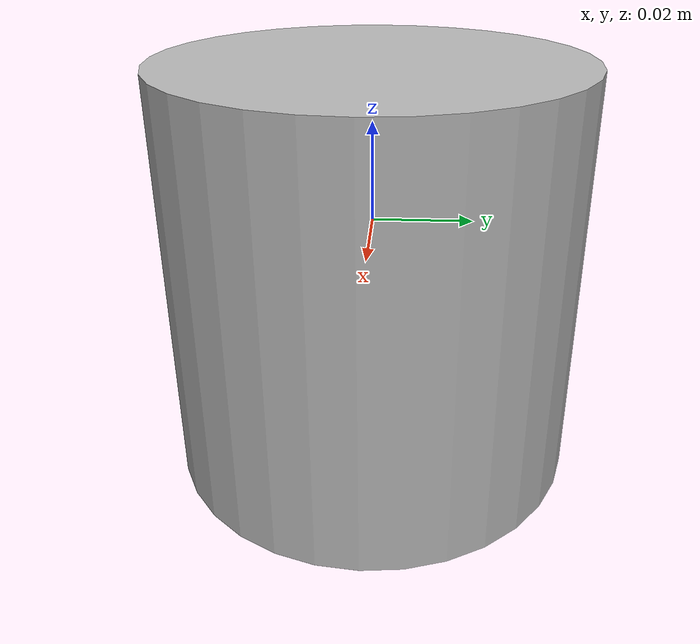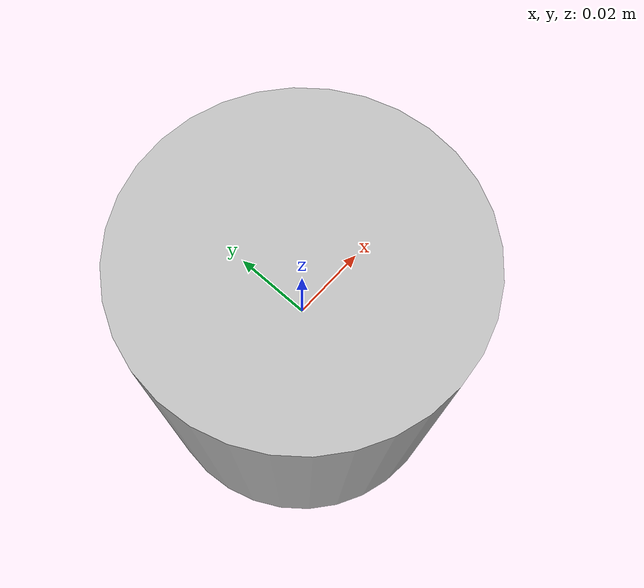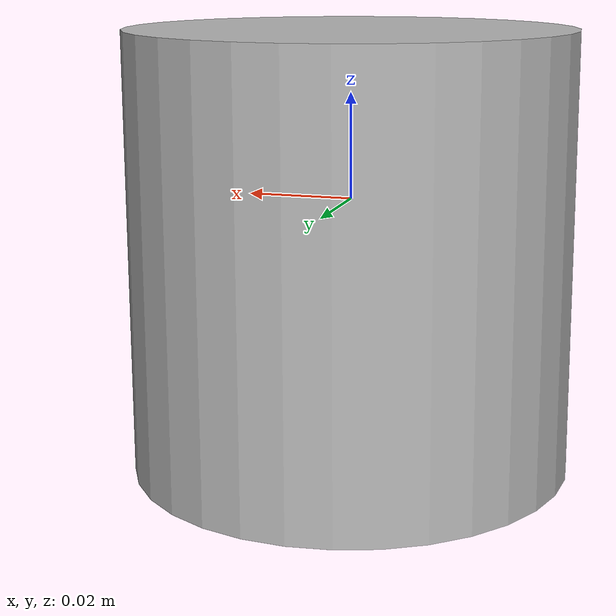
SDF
<?xml version="1.0" ?>
<sdf version="1.10">
  <model name="Cylinder_plain_white">
    <static>true</static>
    <link name="link">
      <collision name="collider">
        <geometry>
          <box> <size>0.1 0.1 0.1</size> </box>
        </geometry>
      </collision>

      <pose>0 0 -0.01 -1.57 0 0</pose>
      <visual name="visual">
        <geometry>
          <mesh>
            <uri>model://Cylinder_plain_white/Cylinder.obj</uri>
            <scale>0.05 0.05 0.05</scale>
          </mesh>
        </geometry>
      </visual>
    </link>
  </model>
</sdf>
